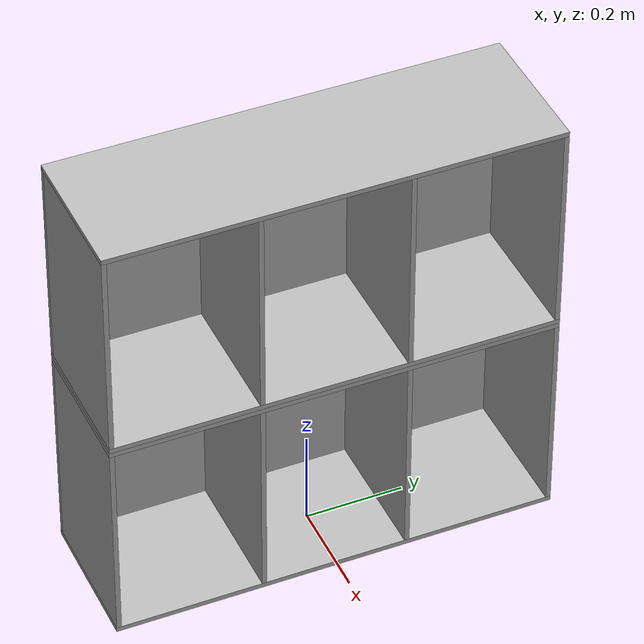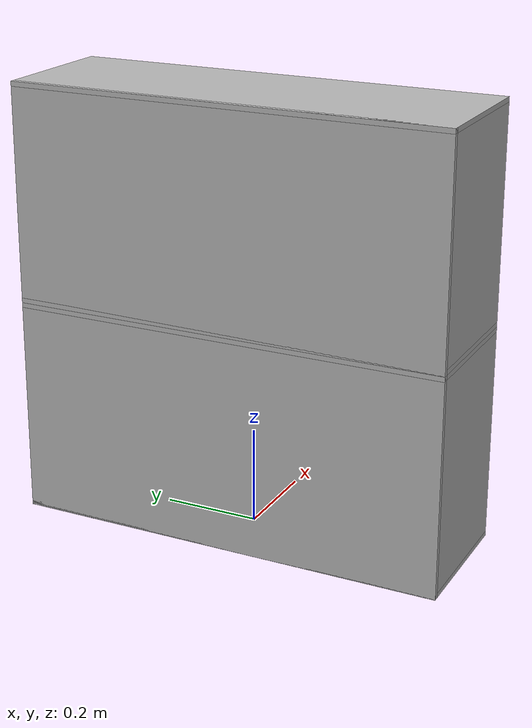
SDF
<?xml version="1.0"?>
<sdf version="1.6">
  <world name="rwc2017/rack_middle">
    <light name="sun" type="directional">
      <direction>0.5 0.1 -0.9</direction>
      <pose>0 0 10 0 0 0</pose>
      <specular>0.2 0.2 0.2 1</specular>
      <cast_shadows>true</cast_shadows>
      <diffuse>0.8 0.8 0.8 1</diffuse>
      <attenuation>
        <range>1000</range>
        <quadratic>0.001</quadratic>
        <constant>0.9</constant>
        <linear>0.01</linear>
      </attenuation>
    </light>
    <include>
      <pose>0 -0.45 0.225 -1.57079632679 0 0</pose>
      <name>lower_part</name>
      <uri>model://rwc2017/cabinet_simple_no_areas</uri>
    </include>
    <include>
      <pose>0 -0.45 0.675 -1.57079632679 0 0</pose>
      <name>top_part</name>
      <uri>model://rwc2017/cabinet_simple_no_areas</uri>
    </include>
    <physics type="ode">
      <real_time_update_rate>333.0</real_time_update_rate>
      <max_step_size>0.003</max_step_size>
      <ode>
        <constraints>
          <cfm>0.0001</cfm>
        </constraints>
        <solver>
          <type>quick</type>
          <iters>100</iters>
        </solver>
      </ode>
    </physics>
  </world>
</sdf>

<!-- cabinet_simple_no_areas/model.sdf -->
<sdf version="1.6">
  <model name="rwc2017/cabinet_simple_no_areas">
    <link name="1_link">
      <collision name="1_col">
        <geometry>
          <box>
            <size>0.29 0.01 0.9</size>
          </box>
        </geometry>
      </collision>
      <visual name="1_vis">
        <geometry>
          <box>
            <size>0.29 0.01 0.9</size>
          </box>
        </geometry>
      </visual>
      <pose>0 -0.22 0.45 0 0 0</pose>
    </link>
    <link name="2_link">
      <collision name="2_col">
        <geometry>
          <box>
            <size>0.29 0.01 0.9</size>
          </box>
        </geometry>
      </collision>
      <visual name="2_vis">
        <geometry>
          <box>
            <size>0.29 0.01 0.9</size>
          </box>
        </geometry>
      </visual>
      <pose>0 0.22 0.45 0 0 0</pose>
    </link>
    <link name="3_link">
      <collision name="3_col">
        <geometry>
          <box>
            <size>0.01 0.45 0.9</size>
          </box>
        </geometry>
      </collision>
      <visual name="3_vis">
        <geometry>
          <box>
            <size>0.01 0.45 0.9</size>
          </box>
        </geometry>
      </visual>
      <pose>-0.14 0 0.45 0 0 0</pose>
    </link>
    <link name="4_link">
      <collision name="4_col">
        <geometry>
          <box>
            <size>0.28 0.43 0.01</size>
          </box>
        </geometry>
      </collision>
      <visual name="4_vis">
        <geometry>
          <box>
            <size>0.28 0.43 0.01</size>
          </box>
        </geometry>
      </visual>
      <pose>0.005 0 0.895 0 0 0</pose>
    </link>
    <link name="5_link">
      <collision name="5_col">
        <geometry>
          <box>
            <size>0.28 0.43 0.01</size>
          </box>
        </geometry>
      </collision>
      <visual name="5_vis">
        <geometry>
          <box>
            <size>0.28 0.43 0.01</size>
          </box>
        </geometry>
      </visual>
      <pose>0.005 0 0.005 0 0 0</pose>
    </link>
    <link name="6_link">
      <collision name="6_col">
        <geometry>
          <box>
            <size>0.28 0.43 0.01</size>
          </box>
        </geometry>
      </collision>
      <visual name="6_vis">
        <geometry>
          <box>
            <size>0.28 0.43 0.01</size>
          </box>
        </geometry>
      </visual>
      <pose>0.005 0 0.3 0 0 0</pose>
    </link>
    <link name="7_link">
      <collision name="7_col">
        <geometry>
          <box>
            <size>0.28 0.43 0.01</size>
          </box>
        </geometry>
      </collision>
      <visual name="7_vis">
        <geometry>
          <box>
            <size>0.28 0.43 0.01</size>
          </box>
        </geometry>
      </visual>
      <pose>0.005 0 0.595 0 0 0</pose>
    </link>
    <static>true</static>
  </model>
</sdf>
